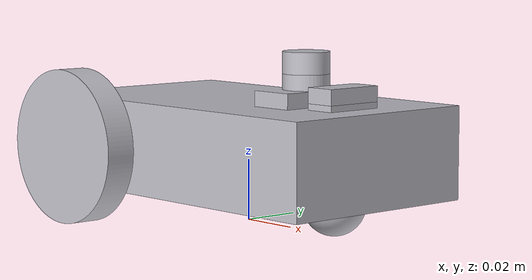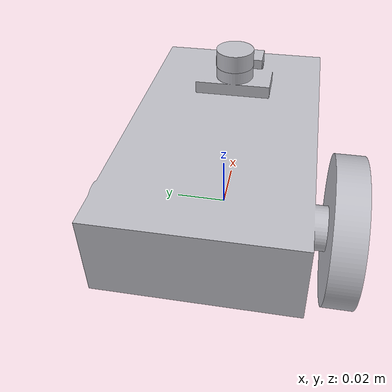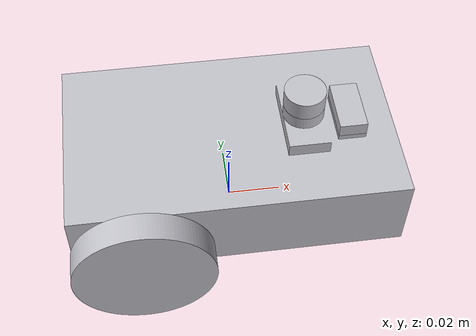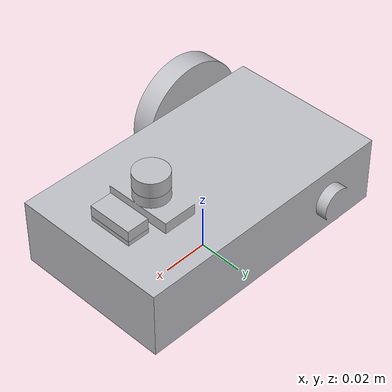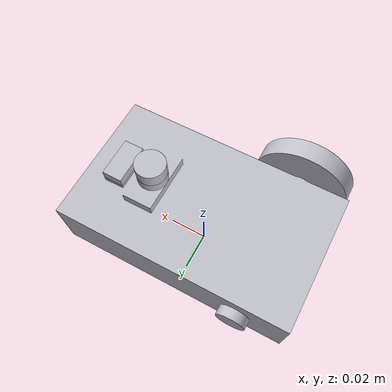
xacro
<?xml version="1.0"?>
<robot xmlns:xacro="http://www.ros.org/wiki/xacro">

      <link name="base_footprint" />

      <link name="base_link">
        <inertial>
          <origin xyz="0.00015649276754231247 -1.5202413949868906e-20 0.02525516987016914" rpy="0 0 0"/>
          <mass value="2.0198106425915117"/>
          <inertia ixx="0.000987" iyy="0.002574" izz="0.003244" ixy="-0.0" iyz="0.0" ixz="-1.5e-05"/>
        </inertial>
        <visual>
          <origin xyz="0 0 0" rpy="0 0 0"/>
          <geometry>
            <mesh filename="file://$(find acc_robotics_description)/meshes/base_link.stl" scale="0.001 0.001 0.001"/>
          </geometry>
          <material name="silver"/>
        </visual>
        <collision>
          <origin xyz="0 0 0" rpy="0 0 0"/>
          <geometry>
            <mesh filename="file://$(find acc_robotics_description)/meshes/base_link.stl" scale="0.001 0.001 0.001"/>
          </geometry>
        </collision>
      </link>

      <link name="lidar_link">
        <inertial>
          <origin xyz="4.3119310248057596e-07 -4.421365884183054e-18 0.003499999999999996" rpy="0 0 0"/>
          <mass value="0.009710466542705201"/>
          <inertia ixx="0.0" iyy="0.0" izz="0.0" ixy="0.0" iyz="0.0" ixz="-0.0"/>
        </inertial>
        <visual>
          <origin xyz="-0.027035 0.0 -0.05" rpy="0 0 0"/>
          <geometry>
            <mesh filename="file://$(find acc_robotics_description)/meshes/lidar_link_1.stl" scale="0.001 0.001 0.001"/>
          </geometry>
          <material name="silver"/>
        </visual>
        <collision>
          <origin xyz="-0.027035 0.0 -0.05" rpy="0 0 0"/>
          <geometry>
            <mesh filename="file://$(find acc_robotics_description)/meshes/lidar_link_1.stl" scale="0.001 0.001 0.001"/>
          </geometry>
        </collision>
      </link>

      <link name="camera_link">
        <inertial>
          <origin xyz="-2.2124375007731567e-07 -4.225376316804157e-18 0.0025000000000000022" rpy="0 0 0"/>
          <mass value="0.00785"/>
          <inertia ixx="0.0" iyy="0.0" izz="0.0" ixy="-0.0" iyz="0.0" ixz="0.0"/>
        </inertial>
        <visual>
          <origin xyz="-0.043496 0.0 -0.042" rpy="0 0 0"/>
          <geometry>
            <mesh filename="file://$(find acc_robotics_description)/meshes/camera_link_1.stl" scale="0.001 0.001 0.001"/>
          </geometry>
          <material name="silver"/>
        </visual>
        <collision>
          <origin xyz="-0.043496 0.0 -0.042" rpy="0 0 0"/>
          <geometry>
            <mesh filename="file://$(find acc_robotics_description)/meshes/camera_link_1.stl" scale="0.001 0.001 0.001"/>
          </geometry>
        </collision>
      </link>

      <link name="left_wheel_link">
        <inertial>
          <origin xyz="-3.469446951953614e-17 0.005000000000000053 -6.938893903907228e-18" rpy="0 0 0"/>
          <mass value="0.1541343895667492"/>
          <inertia ixx="2.5e-05" iyy="4.8e-05" izz="2.5e-05" ixy="-0.0" iyz="-0.0" ixz="0.0"/>
        </inertial>
        <visual>
          <origin xyz="0.035 -0.04 -0.025" rpy="0 0 0"/>
          <geometry>
            <mesh filename="file://$(find acc_robotics_description)/meshes/left_wheel_link_1.stl" scale="0.001 0.001 0.001"/>
          </geometry>
          <material name="silver"/>
        </visual>
        <collision>
          <origin xyz="0.035 -0.04 -0.025" rpy="0 0 0"/>
          <geometry>
            <mesh filename="file://$(find acc_robotics_description)/meshes/left_wheel_link_1.stl" scale="0.001 0.001 0.001"/>
          </geometry>
        </collision>
      </link>

      <link name="right_wheel_link">
        <inertial>
          <origin xyz="-3.469446951953614e-17 -0.005000000000000053 -6.938893903907228e-18" rpy="0 0 0"/>
          <mass value="0.1541343895667492"/>
          <inertia ixx="2.5e-05" iyy="4.8e-05" izz="2.5e-05" ixy="0.0" iyz="0.0" ixz="0.0"/>
        </inertial>
        <visual>
          <origin xyz="0.035 0.04 -0.025" rpy="0 0 0"/>
          <geometry>
            <mesh filename="file://$(find acc_robotics_description)/meshes/right_wheel_link_1.stl" scale="0.001 0.001 0.001"/>
          </geometry>
          <material name="silver"/>
        </visual>
        <collision>
          <origin xyz="0.035 0.04 -0.025" rpy="0 0 0"/>
          <geometry>
            <mesh filename="file://$(find acc_robotics_description)/meshes/right_wheel_link_1.stl" scale="0.001 0.001 0.001"/>
          </geometry>
        </collision>
      </link>

      <link name="caster_wheel_link">
        <inertial>
          <origin xyz="0.04000000000000004 -1.7654107985457012e-18 -0.00375" rpy="0 0 0"/>
          <mass value="0.016441001553786586"/>
          <inertia ixx="0.0" iyy="0.0" izz="1e-06" ixy="-0.0" iyz="0.0" ixz="0.0"/>
        </inertial>
        <visual>
          <origin xyz="-0.0 -0.0 -0.01" rpy="0 0 0"/>
          <geometry>
            <mesh filename="file://$(find acc_robotics_description)/meshes/caster_wheel_link_1.stl" scale="0.001 0.001 0.001"/>
          </geometry>
          <material name="silver"/>
        </visual>
        <collision>
          <origin xyz="-0.0 -0.0 -0.01" rpy="0 0 0"/>
          <geometry>
            <mesh filename="file://$(find acc_robotics_description)/meshes/caster_wheel_link_1.stl" scale="0.001 0.001 0.001"/>
          </geometry>
        </collision>
      </link>

      <joint name="base_joint" type="fixed">
        <parent link="base_footprint" />
        <child link="base_link" />
        <origin xyz="0 0 0" rpy="0 0 0"/>
      </joint>

      <joint name="base_lidar_joint" type="fixed">
        <origin xyz="0.027035 0.0 0.05" rpy="0 0 0"/>
        <parent link="base_link"/>
        <child link="lidar_link"/>
      </joint>

      <joint name="base_camera_joint" type="fixed">
        <origin xyz="0.043496 0.0 0.042" rpy="0 0 0"/>
        <parent link="base_link"/>
        <child link="camera_link"/>
      </joint>

      <joint name="base_left_wheel_joint" type="continuous">
        <origin xyz="-0.035 0.04 0.025" rpy="0 0 0"/>
        <parent link="base_link"/>
        <child link="left_wheel_link"/>
        <axis xyz="0.0 1.0 0.0"/>
      </joint>

      <joint name="base_right_wheel_joint" type="continuous">
        <origin xyz="-0.035 -0.04 0.025" rpy="0 0 0"/>
        <parent link="base_link"/>
        <child link="right_wheel_link"/>
        <axis xyz="-0.0 1.0 0.0"/>
      </joint>

      <joint name="base_caster_joint" type="fixed">
        <origin xyz="0.0 0.0 0.01" rpy="0 0 0"/>
        <parent link="base_link"/>
        <child link="caster_wheel_link"/>
      </joint>

</robot>
